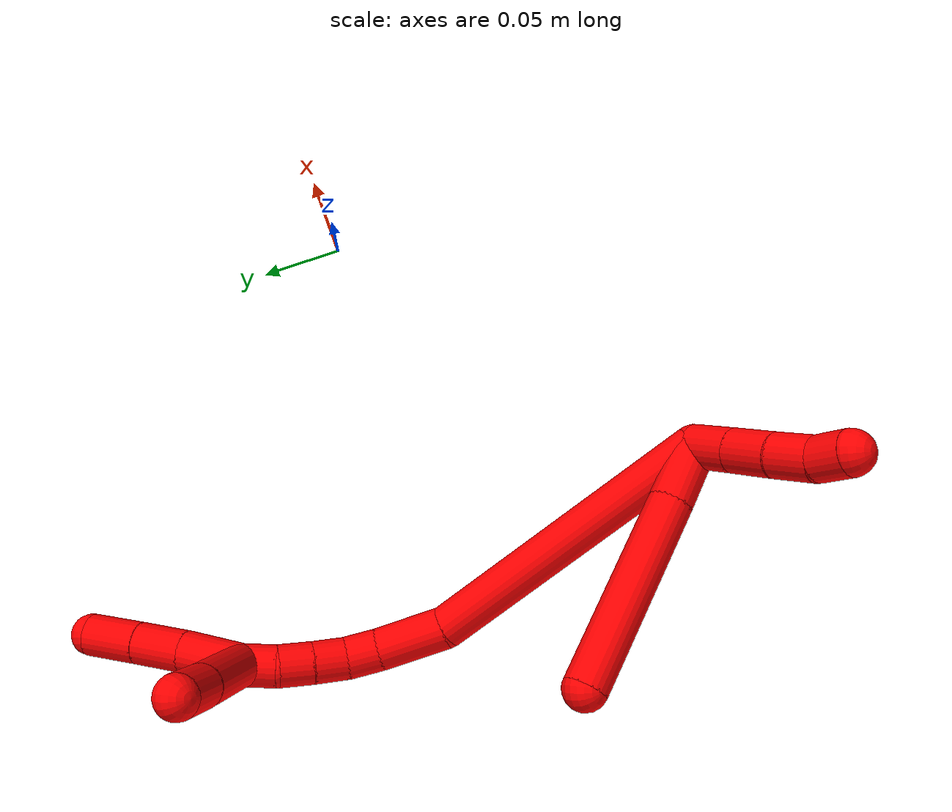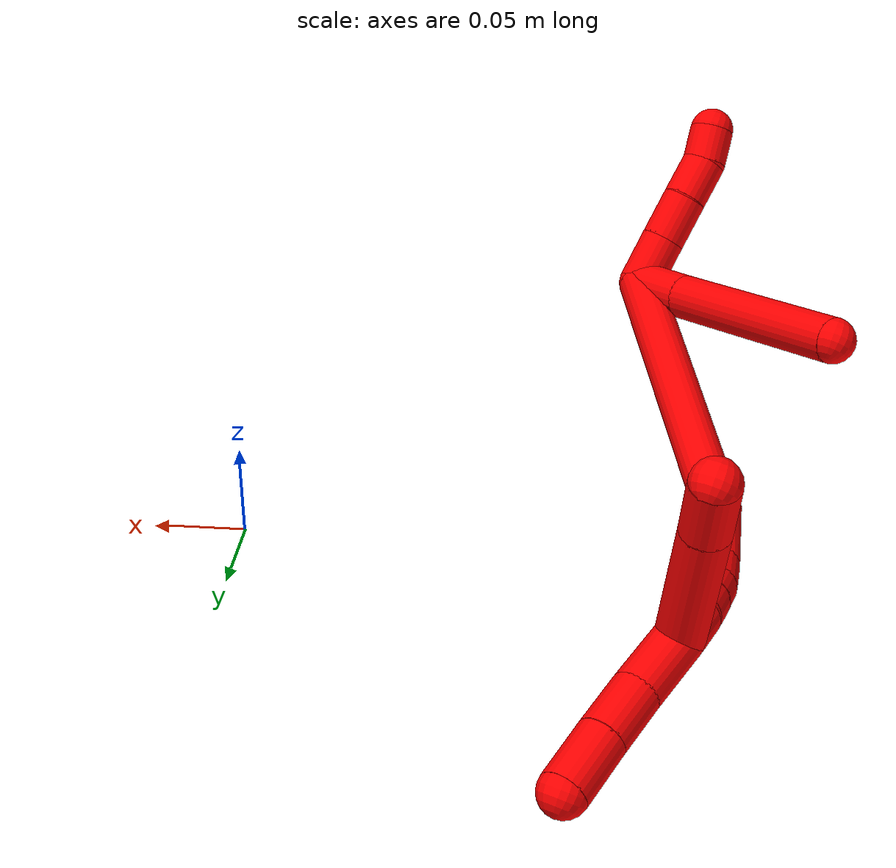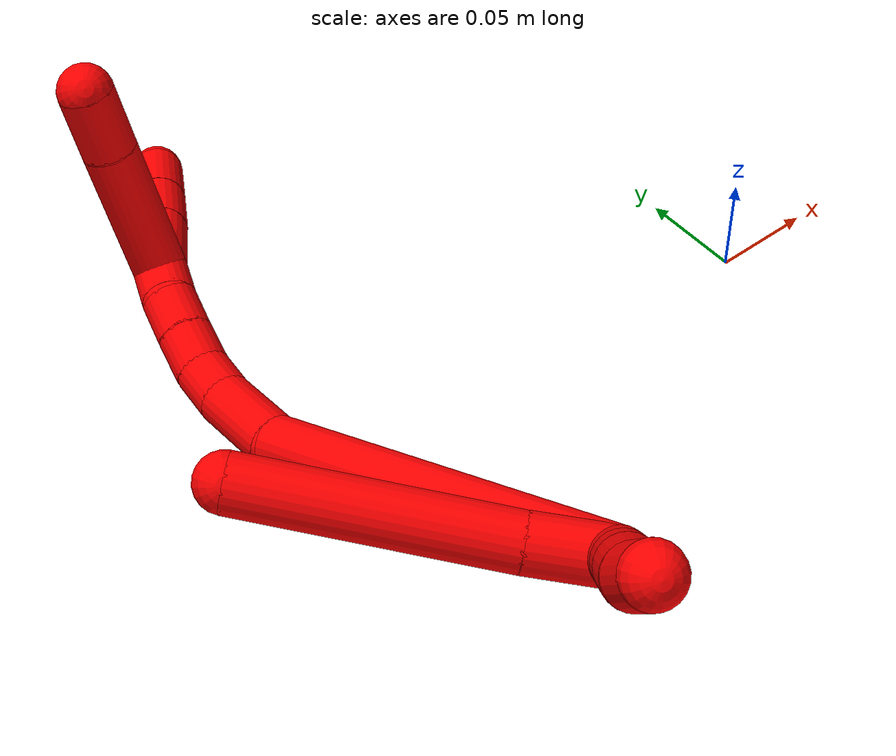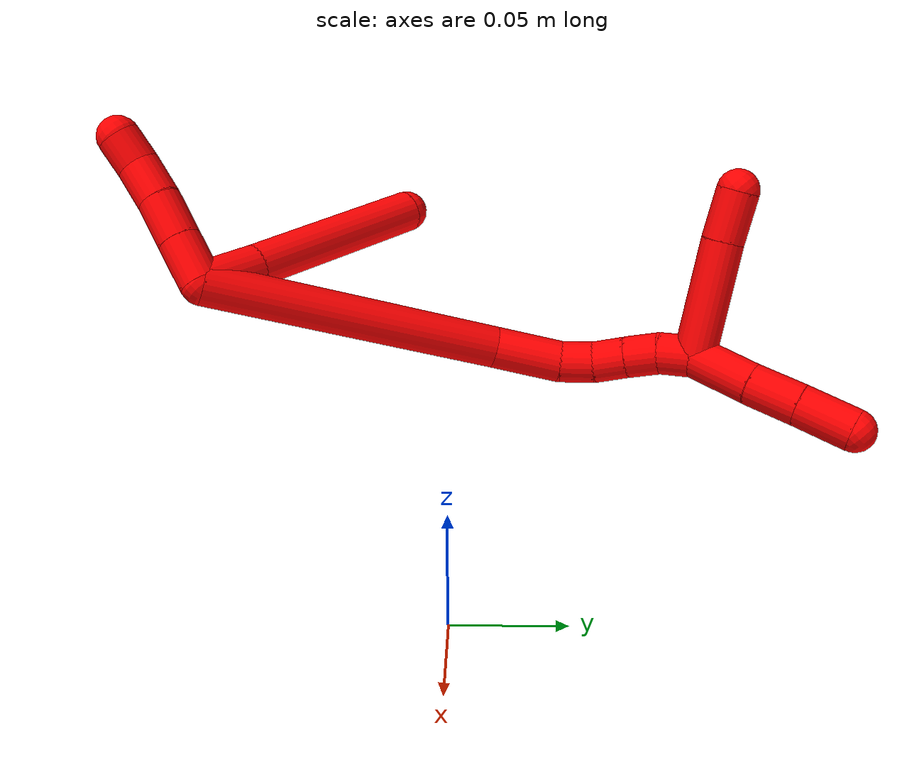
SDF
<sdf version="1.7">
 <world name="default">
  <model name="2">
   <static>0</static>
   <link name="2">
    <collision name="collision-cylinder-e_1_2_8">
     <pose>-0.011073 0.014046 -0.002919 -1.77568 -0.657359 0.793906</pose>
     <geometry><cylinder><radius>0.0125</radius><length>0.036245</length></cylinder></geometry>
     <surface>
      <friction><ode><mu>1.16</mu><mu2>1.16</mu2><slip1>0</slip1><slip2>0</slip2></ode></friction>
      <contact><ode><kp>1e+06</kp><kd>1</kd><max_vel>0</max_vel><min_depth>0.001</min_depth></ode></contact>
     </surface>
    </collision>
    <visual name="visual-cylinder-e_1_2_8">
     <pose>-0.011073 0.014046 -0.002919 -1.77568 -0.657359 0.793906</pose>
     <geometry><cylinder><radius>0.0125</radius><length>0.036245</length></cylinder></geometry>
     <material><ambient>1 0 0 1</ambient></material>
    </visual>
    <collision name="collision-cylinder-e_2_8_6">
     <pose>-0.054946 0.073743 -0.014512 -1.75858 -0.614635 0.732157</pose>
     <geometry><cylinder><radius>0.0125</radius><length>0.113755</length></cylinder></geometry>
     <surface>
      <friction><ode><mu>1.16</mu><mu2>1.16</mu2><slip1>0</slip1><slip2>0</slip2></ode></friction>
      <contact><ode><kp>1e+06</kp><kd>1</kd><max_vel>0</max_vel><min_depth>0.001</min_depth></ode></contact>
     </surface>
    </collision>
    <visual name="visual-cylinder-e_2_8_6">
     <pose>-0.054946 0.073743 -0.014512 -1.75858 -0.614635 0.732157</pose>
     <geometry><cylinder><radius>0.0125</radius><length>0.113755</length></cylinder></geometry>
     <material><ambient>1 0 0 1</ambient></material>
    </visual>
    <collision name="collision-cylinder-e_1_2_9">
     <pose>-0.001184 0.002636 0.013831 -0.188351 -0.083894 0.007929</pose>
     <geometry><cylinder><radius>0.0125</radius><length>0.028259</length></cylinder></geometry>
     <surface>
      <friction><ode><mu>1.16</mu><mu2>1.16</mu2><slip1>0</slip1><slip2>0</slip2></ode></friction>
      <contact><ode><kp>1e+06</kp><kd>1</kd><max_vel>0</max_vel><min_depth>0.001</min_depth></ode></contact>
     </surface>
    </collision>
    <visual name="visual-cylinder-e_1_2_9">
     <pose>-0.001184 0.002636 0.013831 -0.188351 -0.083894 0.007929</pose>
     <geometry><cylinder><radius>0.0125</radius><length>0.028259</length></cylinder></geometry>
     <material><ambient>1 0 0 1</ambient></material>
    </visual>
    <collision name="collision-cylinder-e_2_9_10">
     <pose>-0.003573 0.007901 0.040931 -0.195561 -0.088871 0.008723</pose>
     <geometry><cylinder><radius>0.0125</radius><length>0.027161</length></cylinder></geometry>
     <surface>
      <friction><ode><mu>1.16</mu><mu2>1.16</mu2><slip1>0</slip1><slip2>0</slip2></ode></friction>
      <contact><ode><kp>1e+06</kp><kd>1</kd><max_vel>0</max_vel><min_depth>0.001</min_depth></ode></contact>
     </surface>
    </collision>
    <visual name="visual-cylinder-e_2_9_10">
     <pose>-0.003573 0.007901 0.040931 -0.195561 -0.088871 0.008723</pose>
     <geometry><cylinder><radius>0.0125</radius><length>0.027161</length></cylinder></geometry>
     <material><ambient>1 0 0 1</ambient></material>
    </visual>
    <collision name="collision-cylinder-e_3_10_11">
     <pose>-0.00606 0.011959 0.066266 -0.117895 -0.105067 0.006206</pose>
     <geometry><cylinder><radius>0.0125</radius><length>0.024435</length></cylinder></geometry>
     <surface>
      <friction><ode><mu>1.16</mu><mu2>1.16</mu2><slip1>0</slip1><slip2>0</slip2></ode></friction>
      <contact><ode><kp>1e+06</kp><kd>1</kd><max_vel>0</max_vel><min_depth>0.001</min_depth></ode></contact>
     </surface>
    </collision>
    <visual name="visual-cylinder-e_3_10_11">
     <pose>-0.00606 0.011959 0.066266 -0.117895 -0.105067 0.006206</pose>
     <geometry><cylinder><radius>0.0125</radius><length>0.024435</length></cylinder></geometry>
     <material><ambient>1 0 0 1</ambient></material>
    </visual>
    <collision name="collision-cylinder-e_4_11_5">
     <pose>-0.005901 0.014362 0.088253 -0.097848 0.143487 -0.007038</pose>
     <geometry><cylinder><radius>0.0125</radius><length>0.020145</length></cylinder></geometry>
     <surface>
      <friction><ode><mu>1.16</mu><mu2>1.16</mu2><slip1>0</slip1><slip2>0</slip2></ode></friction>
      <contact><ode><kp>1e+06</kp><kd>1</kd><max_vel>0</max_vel><min_depth>0.001</min_depth></ode></contact>
     </surface>
    </collision>
    <visual name="visual-cylinder-e_4_11_5">
     <pose>-0.005901 0.014362 0.088253 -0.097848 0.143487 -0.007038</pose>
     <geometry><cylinder><radius>0.0125</radius><length>0.020145</length></cylinder></geometry>
     <material><ambient>1 0 0 1</ambient></material>
    </visual>
    <collision name="collision-cylinder-e_1_2_12">
     <pose>-0.031998 0.05284 -0.063558 -2.44801 -0.369361 0.954169</pose>
     <geometry><cylinder><radius>0.0125</radius><length>0.177263</length></cylinder></geometry>
     <surface>
      <friction><ode><mu>1.16</mu><mu2>1.16</mu2><slip1>0</slip1><slip2>0</slip2></ode></friction>
      <contact><ode><kp>1e+06</kp><kd>1</kd><max_vel>0</max_vel><min_depth>0.001</min_depth></ode></contact>
     </surface>
    </collision>
    <visual name="visual-cylinder-e_1_2_12">
     <pose>-0.031998 0.05284 -0.063558 -2.44801 -0.369361 0.954169</pose>
     <geometry><cylinder><radius>0.0125</radius><length>0.177263</length></cylinder></geometry>
     <material><ambient>1 0 0 1</ambient></material>
    </visual>
    <collision name="collision-cylinder-e_2_12_13">
     <pose>-0.065394 0.118323 -0.143329 -2.47931 -0.067911 0.196966</pose>
     <geometry><cylinder><radius>0.0125</radius><length>0.041214</length></cylinder></geometry>
     <surface>
      <friction><ode><mu>1.16</mu><mu2>1.16</mu2><slip1>0</slip1><slip2>0</slip2></ode></friction>
      <contact><ode><kp>1e+06</kp><kd>1</kd><max_vel>0</max_vel><min_depth>0.001</min_depth></ode></contact>
     </surface>
    </collision>
    <visual name="visual-cylinder-e_2_12_13">
     <pose>-0.065394 0.118323 -0.143329 -2.47931 -0.067911 0.196966</pose>
     <geometry><cylinder><radius>0.0125</radius><length>0.041214</length></cylinder></geometry>
     <material><ambient>1 0 0 1</ambient></material>
    </visual>
    <collision name="collision-cylinder-e_3_13_14">
     <pose>-0.066078 0.138608 -0.166241 -2.29053 0.070173 -0.154586</pose>
     <geometry><cylinder><radius>0.0125</radius><length>0.020377</length></cylinder></geometry>
     <surface>
      <friction><ode><mu>1.16</mu><mu2>1.16</mu2><slip1>0</slip1><slip2>0</slip2></ode></friction>
      <contact><ode><kp>1e+06</kp><kd>1</kd><max_vel>0</max_vel><min_depth>0.001</min_depth></ode></contact>
     </surface>
    </collision>
    <visual name="visual-cylinder-e_3_13_14">
     <pose>-0.066078 0.138608 -0.166241 -2.29053 0.070173 -0.154586</pose>
     <geometry><cylinder><radius>0.0125</radius><length>0.020377</length></cylinder></geometry>
     <material><ambient>1 0 0 1</ambient></material>
    </visual>
    <collision name="collision-cylinder-e_4_14_15">
     <pose>-0.062807 0.154491 -0.178057 -2.12643 0.257741 -0.457821</pose>
     <geometry><cylinder><radius>0.0125</radius><length>0.020062</length></cylinder></geometry>
     <surface>
      <friction><ode><mu>1.16</mu><mu2>1.16</mu2><slip1>0</slip1><slip2>0</slip2></ode></friction>
      <contact><ode><kp>1e+06</kp><kd>1</kd><max_vel>0</max_vel><min_depth>0.001</min_depth></ode></contact>
     </surface>
    </collision>
    <visual name="visual-cylinder-e_4_14_15">
     <pose>-0.062807 0.154491 -0.178057 -2.12643 0.257741 -0.457821</pose>
     <geometry><cylinder><radius>0.0125</radius><length>0.020062</length></cylinder></geometry>
     <material><ambient>1 0 0 1</ambient></material>
    </visual>
    <collision name="collision-cylinder-e_5_15_16">
     <pose>-0.057416 0.170776 -0.188587 -2.16308 0.28433 -0.525228</pose>
     <geometry><cylinder><radius>0.0125</radius><length>0.020203</length></cylinder></geometry>
     <surface>
      <friction><ode><mu>1.16</mu><mu2>1.16</mu2><slip1>0</slip1><slip2>0</slip2></ode></friction>
      <contact><ode><kp>1e+06</kp><kd>1</kd><max_vel>0</max_vel><min_depth>0.001</min_depth></ode></contact>
     </surface>
    </collision>
    <visual name="visual-cylinder-e_5_15_16">
     <pose>-0.057416 0.170776 -0.188587 -2.16308 0.28433 -0.525228</pose>
     <geometry><cylinder><radius>0.0125</radius><length>0.020203</length></cylinder></geometry>
     <material><ambient>1 0 0 1</ambient></material>
    </visual>
    <collision name="collision-cylinder-e_6_16_1">
     <pose>-0.05112 0.185506 -0.201232 -2.39547 0.338083 -0.822407</pose>
     <geometry><cylinder><radius>0.0125</radius><length>0.020881</length></cylinder></geometry>
     <surface>
      <friction><ode><mu>1.16</mu><mu2>1.16</mu2><slip1>0</slip1><slip2>0</slip2></ode></friction>
      <contact><ode><kp>1e+06</kp><kd>1</kd><max_vel>0</max_vel><min_depth>0.001</min_depth></ode></contact>
     </surface>
    </collision>
    <visual name="visual-cylinder-e_6_16_1">
     <pose>-0.05112 0.185506 -0.201232 -2.39547 0.338083 -0.822407</pose>
     <geometry><cylinder><radius>0.0125</radius><length>0.020881</length></cylinder></geometry>
     <material><ambient>1 0 0 1</ambient></material>
    </visual>
    <collision name="collision-cylinder-e_1_1_17">
     <pose>-0.040964 0.198383 -0.224663 -2.77654 0.368313 -1.57988</pose>
     <geometry><cylinder><radius>0.0125</radius><length>0.037176</length></cylinder></geometry>
     <surface>
      <friction><ode><mu>1.16</mu><mu2>1.16</mu2><slip1>0</slip1><slip2>0</slip2></ode></friction>
      <contact><ode><kp>1e+06</kp><kd>1</kd><max_vel>0</max_vel><min_depth>0.001</min_depth></ode></contact>
     </surface>
    </collision>
    <visual name="visual-cylinder-e_1_1_17">
     <pose>-0.040964 0.198383 -0.224663 -2.77654 0.368313 -1.57988</pose>
     <geometry><cylinder><radius>0.0125</radius><length>0.037176</length></cylinder></geometry>
     <material><ambient>1 0 0 1</ambient></material>
    </visual>
    <collision name="collision-cylinder-e_2_17_18">
     <pose>-0.029208 0.210287 -0.253815 -2.7262 0.3435 -1.37736</pose>
     <geometry><cylinder><radius>0.0125</radius><length>0.030071</length></cylinder></geometry>
     <surface>
      <friction><ode><mu>1.16</mu><mu2>1.16</mu2><slip1>0</slip1><slip2>0</slip2></ode></friction>
      <contact><ode><kp>1e+06</kp><kd>1</kd><max_vel>0</max_vel><min_depth>0.001</min_depth></ode></contact>
     </surface>
    </collision>
    <visual name="visual-cylinder-e_2_17_18">
     <pose>-0.029208 0.210287 -0.253815 -2.7262 0.3435 -1.37736</pose>
     <geometry><cylinder><radius>0.0125</radius><length>0.030071</length></cylinder></geometry>
     <material><ambient>1 0 0 1</ambient></material>
    </visual>
    <collision name="collision-cylinder-e_3_18_4">
     <pose>-0.018965 0.221984 -0.281106 -2.74622 0.321825 -1.36204</pose>
     <geometry><cylinder><radius>0.0125</radius><length>0.032753</length></cylinder></geometry>
     <surface>
      <friction><ode><mu>1.16</mu><mu2>1.16</mu2><slip1>0</slip1><slip2>0</slip2></ode></friction>
      <contact><ode><kp>1e+06</kp><kd>1</kd><max_vel>0</max_vel><min_depth>0.001</min_depth></ode></contact>
     </surface>
    </collision>
    <visual name="visual-cylinder-e_3_18_4">
     <pose>-0.018965 0.221984 -0.281106 -2.74622 0.321825 -1.36204</pose>
     <geometry><cylinder><radius>0.0125</radius><length>0.032753</length></cylinder></geometry>
     <material><ambient>1 0 0 1</ambient></material>
    </visual>
    <collision name="collision-cylinder-e_1_1_19">
     <pose>-0.038285 0.218813 -0.18788 -0.912583 0.271619 -0.133946</pose>
     <geometry><cylinder><radius>0.0125</radius><length>0.069864</length></cylinder></geometry>
     <surface>
      <friction><ode><mu>1.16</mu><mu2>1.16</mu2><slip1>0</slip1><slip2>0</slip2></ode></friction>
      <contact><ode><kp>1e+06</kp><kd>1</kd><max_vel>0</max_vel><min_depth>0.001</min_depth></ode></contact>
     </surface>
    </collision>
    <visual name="visual-cylinder-e_1_1_19">
     <pose>-0.038285 0.218813 -0.18788 -0.912583 0.271619 -0.133946</pose>
     <geometry><cylinder><radius>0.0125</radius><length>0.069864</length></cylinder></geometry>
     <material><ambient>1 0 0 1</ambient></material>
    </visual>
    <collision name="collision-cylinder-e_2_19_3">
     <pose>-0.024597 0.257312 -0.159089 -0.966188 0.290513 -0.153169</pose>
     <geometry><cylinder><radius>0.0125</radius><length>0.030136</length></cylinder></geometry>
     <surface>
      <friction><ode><mu>1.16</mu><mu2>1.16</mu2><slip1>0</slip1><slip2>0</slip2></ode></friction>
      <contact><ode><kp>1e+06</kp><kd>1</kd><max_vel>0</max_vel><min_depth>0.001</min_depth></ode></contact>
     </surface>
    </collision>
    <visual name="visual-cylinder-e_2_19_3">
     <pose>-0.024597 0.257312 -0.159089 -0.966188 0.290513 -0.153169</pose>
     <geometry><cylinder><radius>0.0125</radius><length>0.030136</length></cylinder></geometry>
     <material><ambient>1 0 0 1</ambient></material>
    </visual>
    <collision name="collision-sphere-3">
     <pose>-0.020281 0.269189 -0.150883 0 -0 0</pose>
     <geometry><sphere><radius>0.0125</radius></sphere></geometry>
     <surface>
      <friction><ode><mu>1.16</mu><mu2>1.16</mu2><slip1>0</slip1><slip2>0</slip2></ode></friction>
      <contact><ode><kp>1e+06</kp><kd>1</kd><max_vel>0</max_vel><min_depth>0.001</min_depth></ode></contact>
     </surface>
    </collision>
    <visual name="visual-sphere-3">
     <pose>-0.020281 0.269189 -0.150883 0 -0 0</pose>
     <geometry><sphere><radius>0.0125</radius></sphere></geometry>
     <material><ambient>1 0 0 1</ambient></material>
    </visual>
    <collision name="collision-sphere-19">
     <pose>-0.028913 0.245435 -0.167295 0 -0 0</pose>
     <geometry><sphere><radius>0.0125</radius></sphere></geometry>
     <surface>
      <friction><ode><mu>1.16</mu><mu2>1.16</mu2><slip1>0</slip1><slip2>0</slip2></ode></friction>
      <contact><ode><kp>1e+06</kp><kd>1</kd><max_vel>0</max_vel><min_depth>0.001</min_depth></ode></contact>
     </surface>
    </collision>
    <visual name="visual-sphere-19">
     <pose>-0.028913 0.245435 -0.167295 0 -0 0</pose>
     <geometry><sphere><radius>0.0125</radius></sphere></geometry>
     <material><ambient>1 0 0 1</ambient></material>
    </visual>
    <collision name="collision-sphere-11">
     <pose>-0.007341 0.013388 0.078332 0 -0 0</pose>
     <geometry><sphere><radius>0.0125</radius></sphere></geometry>
     <surface>
      <friction><ode><mu>1.16</mu><mu2>1.16</mu2><slip1>0</slip1><slip2>0</slip2></ode></friction>
      <contact><ode><kp>1e+06</kp><kd>1</kd><max_vel>0</max_vel><min_depth>0.001</min_depth></ode></contact>
     </surface>
    </collision>
    <visual name="visual-sphere-11">
     <pose>-0.007341 0.013388 0.078332 0 -0 0</pose>
     <geometry><sphere><radius>0.0125</radius></sphere></geometry>
     <material><ambient>1 0 0 1</ambient></material>
    </visual>
    <collision name="collision-sphere-10">
     <pose>-0.004779 0.01053 0.0542 0 -0 0</pose>
     <geometry><sphere><radius>0.0125</radius></sphere></geometry>
     <surface>
      <friction><ode><mu>1.16</mu><mu2>1.16</mu2><slip1>0</slip1><slip2>0</slip2></ode></friction>
      <contact><ode><kp>1e+06</kp><kd>1</kd><max_vel>0</max_vel><min_depth>0.001</min_depth></ode></contact>
     </surface>
    </collision>
    <visual name="visual-sphere-10">
     <pose>-0.004779 0.01053 0.0542 0 -0 0</pose>
     <geometry><sphere><radius>0.0125</radius></sphere></geometry>
     <material><ambient>1 0 0 1</ambient></material>
    </visual>
    <collision name="collision-sphere-6">
     <pose>-0.087745 0.119394 -0.023187 0 -0 0</pose>
     <geometry><sphere><radius>0.0125</radius></sphere></geometry>
     <surface>
      <friction><ode><mu>1.16</mu><mu2>1.16</mu2><slip1>0</slip1><slip2>0</slip2></ode></friction>
      <contact><ode><kp>1e+06</kp><kd>1</kd><max_vel>0</max_vel><min_depth>0.001</min_depth></ode></contact>
     </surface>
    </collision>
    <visual name="visual-sphere-6">
     <pose>-0.087745 0.119394 -0.023187 0 -0 0</pose>
     <geometry><sphere><radius>0.0125</radius></sphere></geometry>
     <material><ambient>1 0 0 1</ambient></material>
    </visual>
    <collision name="collision-sphere-9">
     <pose>-0.002368 0.005273 0.027662 0 -0 0</pose>
     <geometry><sphere><radius>0.0125</radius></sphere></geometry>
     <surface>
      <friction><ode><mu>1.16</mu><mu2>1.16</mu2><slip1>0</slip1><slip2>0</slip2></ode></friction>
      <contact><ode><kp>1e+06</kp><kd>1</kd><max_vel>0</max_vel><min_depth>0.001</min_depth></ode></contact>
     </surface>
    </collision>
    <visual name="visual-sphere-9">
     <pose>-0.002368 0.005273 0.027662 0 -0 0</pose>
     <geometry><sphere><radius>0.0125</radius></sphere></geometry>
     <material><ambient>1 0 0 1</ambient></material>
    </visual>
    <collision name="collision-sphere-2">
     <geometry><sphere><radius>0.0125</radius></sphere></geometry>
     <surface>
      <friction><ode><mu>1.16</mu><mu2>1.16</mu2><slip1>0</slip1><slip2>0</slip2></ode></friction>
      <contact><ode><kp>1e+06</kp><kd>1</kd><max_vel>0</max_vel><min_depth>0.001</min_depth></ode></contact>
     </surface>
    </collision>
    <visual name="visual-sphere-2">
     <geometry><sphere><radius>0.0125</radius></sphere></geometry>
     <material><ambient>1 0 0 1</ambient></material>
    </visual>
    <collision name="collision-sphere-8">
     <pose>-0.022147 0.028092 -0.005838 0 -0 0</pose>
     <geometry><sphere><radius>0.0125</radius></sphere></geometry>
     <surface>
      <friction><ode><mu>1.16</mu><mu2>1.16</mu2><slip1>0</slip1><slip2>0</slip2></ode></friction>
      <contact><ode><kp>1e+06</kp><kd>1</kd><max_vel>0</max_vel><min_depth>0.001</min_depth></ode></contact>
     </surface>
    </collision>
    <visual name="visual-sphere-8">
     <pose>-0.022147 0.028092 -0.005838 0 -0 0</pose>
     <geometry><sphere><radius>0.0125</radius></sphere></geometry>
     <material><ambient>1 0 0 1</ambient></material>
    </visual>
    <collision name="collision-sphere-5">
     <pose>-0.004461 0.015336 0.098174 0 -0 0</pose>
     <geometry><sphere><radius>0.0125</radius></sphere></geometry>
     <surface>
      <friction><ode><mu>1.16</mu><mu2>1.16</mu2><slip1>0</slip1><slip2>0</slip2></ode></friction>
      <contact><ode><kp>1e+06</kp><kd>1</kd><max_vel>0</max_vel><min_depth>0.001</min_depth></ode></contact>
     </surface>
    </collision>
    <visual name="visual-sphere-5">
     <pose>-0.004461 0.015336 0.098174 0 -0 0</pose>
     <geometry><sphere><radius>0.0125</radius></sphere></geometry>
     <material><ambient>1 0 0 1</ambient></material>
    </visual>
    <collision name="collision-sphere-12">
     <pose>-0.063995 0.105681 -0.127116 0 -0 0</pose>
     <geometry><sphere><radius>0.0125</radius></sphere></geometry>
     <surface>
      <friction><ode><mu>1.16</mu><mu2>1.16</mu2><slip1>0</slip1><slip2>0</slip2></ode></friction>
      <contact><ode><kp>1e+06</kp><kd>1</kd><max_vel>0</max_vel><min_depth>0.001</min_depth></ode></contact>
     </surface>
    </collision>
    <visual name="visual-sphere-12">
     <pose>-0.063995 0.105681 -0.127116 0 -0 0</pose>
     <geometry><sphere><radius>0.0125</radius></sphere></geometry>
     <material><ambient>1 0 0 1</ambient></material>
    </visual>
    <collision name="collision-sphere-13">
     <pose>-0.066792 0.130966 -0.159542 0 -0 0</pose>
     <geometry><sphere><radius>0.0125</radius></sphere></geometry>
     <surface>
      <friction><ode><mu>1.16</mu><mu2>1.16</mu2><slip1>0</slip1><slip2>0</slip2></ode></friction>
      <contact><ode><kp>1e+06</kp><kd>1</kd><max_vel>0</max_vel><min_depth>0.001</min_depth></ode></contact>
     </surface>
    </collision>
    <visual name="visual-sphere-13">
     <pose>-0.066792 0.130966 -0.159542 0 -0 0</pose>
     <geometry><sphere><radius>0.0125</radius></sphere></geometry>
     <material><ambient>1 0 0 1</ambient></material>
    </visual>
    <collision name="collision-sphere-14">
     <pose>-0.065363 0.146251 -0.172941 0 -0 0</pose>
     <geometry><sphere><radius>0.0125</radius></sphere></geometry>
     <surface>
      <friction><ode><mu>1.16</mu><mu2>1.16</mu2><slip1>0</slip1><slip2>0</slip2></ode></friction>
      <contact><ode><kp>1e+06</kp><kd>1</kd><max_vel>0</max_vel><min_depth>0.001</min_depth></ode></contact>
     </surface>
    </collision>
    <visual name="visual-sphere-14">
     <pose>-0.065363 0.146251 -0.172941 0 -0 0</pose>
     <geometry><sphere><radius>0.0125</radius></sphere></geometry>
     <material><ambient>1 0 0 1</ambient></material>
    </visual>
    <collision name="collision-sphere-15">
     <pose>-0.06025 0.162732 -0.183174 0 -0 0</pose>
     <geometry><sphere><radius>0.0125</radius></sphere></geometry>
     <surface>
      <friction><ode><mu>1.16</mu><mu2>1.16</mu2><slip1>0</slip1><slip2>0</slip2></ode></friction>
      <contact><ode><kp>1e+06</kp><kd>1</kd><max_vel>0</max_vel><min_depth>0.001</min_depth></ode></contact>
     </surface>
    </collision>
    <visual name="visual-sphere-15">
     <pose>-0.06025 0.162732 -0.183174 0 -0 0</pose>
     <geometry><sphere><radius>0.0125</radius></sphere></geometry>
     <material><ambient>1 0 0 1</ambient></material>
    </visual>
    <collision name="collision-sphere-16">
     <pose>-0.054582 0.178821 -0.193999 0 -0 0</pose>
     <geometry><sphere><radius>0.0125</radius></sphere></geometry>
     <surface>
      <friction><ode><mu>1.16</mu><mu2>1.16</mu2><slip1>0</slip1><slip2>0</slip2></ode></friction>
      <contact><ode><kp>1e+06</kp><kd>1</kd><max_vel>0</max_vel><min_depth>0.001</min_depth></ode></contact>
     </surface>
    </collision>
    <visual name="visual-sphere-16">
     <pose>-0.054582 0.178821 -0.193999 0 -0 0</pose>
     <geometry><sphere><radius>0.0125</radius></sphere></geometry>
     <material><ambient>1 0 0 1</ambient></material>
    </visual>
    <collision name="collision-sphere-1">
     <pose>-0.047657 0.192192 -0.208465 0 -0 0</pose>
     <geometry><sphere><radius>0.0125</radius></sphere></geometry>
     <surface>
      <friction><ode><mu>1.16</mu><mu2>1.16</mu2><slip1>0</slip1><slip2>0</slip2></ode></friction>
      <contact><ode><kp>1e+06</kp><kd>1</kd><max_vel>0</max_vel><min_depth>0.001</min_depth></ode></contact>
     </surface>
    </collision>
    <visual name="visual-sphere-1">
     <pose>-0.047657 0.192192 -0.208465 0 -0 0</pose>
     <geometry><sphere><radius>0.0125</radius></sphere></geometry>
     <material><ambient>1 0 0 1</ambient></material>
    </visual>
    <collision name="collision-sphere-18">
     <pose>-0.024144 0.216 -0.266768 0 -0 0</pose>
     <geometry><sphere><radius>0.0125</radius></sphere></geometry>
     <surface>
      <friction><ode><mu>1.16</mu><mu2>1.16</mu2><slip1>0</slip1><slip2>0</slip2></ode></friction>
      <contact><ode><kp>1e+06</kp><kd>1</kd><max_vel>0</max_vel><min_depth>0.001</min_depth></ode></contact>
     </surface>
    </collision>
    <visual name="visual-sphere-18">
     <pose>-0.024144 0.216 -0.266768 0 -0 0</pose>
     <geometry><sphere><radius>0.0125</radius></sphere></geometry>
     <material><ambient>1 0 0 1</ambient></material>
    </visual>
    <collision name="collision-sphere-17">
     <pose>-0.034272 0.204574 -0.240862 0 -0 0</pose>
     <geometry><sphere><radius>0.0125</radius></sphere></geometry>
     <surface>
      <friction><ode><mu>1.16</mu><mu2>1.16</mu2><slip1>0</slip1><slip2>0</slip2></ode></friction>
      <contact><ode><kp>1e+06</kp><kd>1</kd><max_vel>0</max_vel><min_depth>0.001</min_depth></ode></contact>
     </surface>
    </collision>
    <visual name="visual-sphere-17">
     <pose>-0.034272 0.204574 -0.240862 0 -0 0</pose>
     <geometry><sphere><radius>0.0125</radius></sphere></geometry>
     <material><ambient>1 0 0 1</ambient></material>
    </visual>
    <collision name="collision-sphere-4">
     <pose>-0.013785 0.227967 -0.295443 0 -0 0</pose>
     <geometry><sphere><radius>0.0125</radius></sphere></geometry>
     <surface>
      <friction><ode><mu>1.16</mu><mu2>1.16</mu2><slip1>0</slip1><slip2>0</slip2></ode></friction>
      <contact><ode><kp>1e+06</kp><kd>1</kd><max_vel>0</max_vel><min_depth>0.001</min_depth></ode></contact>
     </surface>
    </collision>
    <visual name="visual-sphere-4">
     <pose>-0.013785 0.227967 -0.295443 0 -0 0</pose>
     <geometry><sphere><radius>0.0125</radius></sphere></geometry>
     <material><ambient>1 0 0 1</ambient></material>
    </visual>
    <inertial>
     <pose>-0.035585 0.10836 -0.096152 0 -0 0</pose>
     <mass>0.75</mass>
     <inertia>
      <ixx>0.000797</ixx>
      <ixy>0</ixy>
      <ixz>0</ixz>
      <iyy>0.000381</iyy>
      <iyz>0</iyz>
      <izz>-0.000209</izz>
     </inertia>
    </inertial>
   </link>
   <pose>-0.210322 -0.146023 0.089858 0.704803 -0.399355 -0.018407</pose>
  </model>
 </world>
</sdf>
